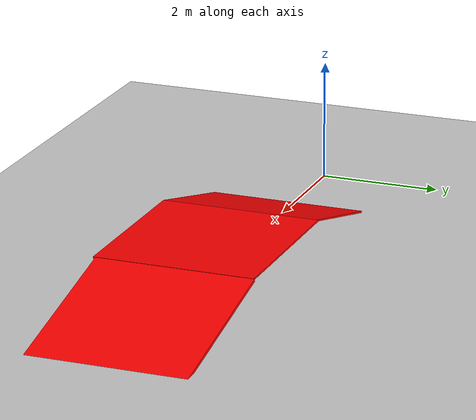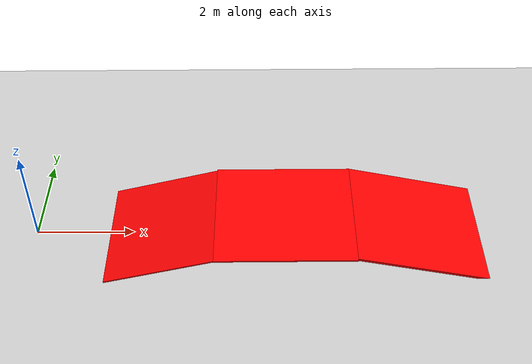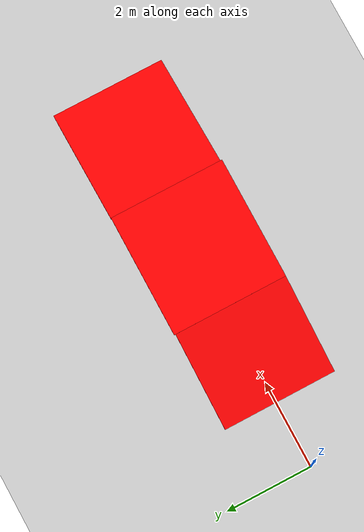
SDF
<sdf version="1.7">
 <world name="default">
  <light name="sun" type="directional">
   <pose>0 0 10 0 -0 0</pose>
   <diffuse>0.8 0.8 0.8 1</diffuse>
   <specular>0.2 0.2 0.2 1</specular>
   <attenuation>
    <range>1000</range>
    <constant>0.9</constant>
    <linear>0.01</linear>
    <quadratic>0.001</quadratic>
   </attenuation>
   <direction>-0.5 0.1 -0.9</direction>
   <spot><inner_angle>0</inner_angle><outer_angle>0</outer_angle><falloff>0</falloff></spot>
  </light>
  <model name="ground_plane">
   <static>1</static>
   <link name="link">
    <collision name="collision">
     <geometry><plane><normal>0 0 1</normal><size>100 100</size></plane></geometry>
     <surface><friction><ode><mu>100</mu><mu2>50</mu2></ode></friction></surface>
    </collision>
    <visual name="visual">
     <cast_shadows>0</cast_shadows>
     <geometry><plane><normal>0 0 1</normal><size>100 100</size></plane></geometry>
     <material>
      <script><uri>file://media/materials/scripts/gazebo.material</uri><name>Gazebo/Grey</name></script>
     </material>
    </visual>
   </link>
  </model>
  <gravity>0 0 -9.8</gravity>
  <magnetic_field>6e-06 2.3e-05 -4.2e-05</magnetic_field>
  <atmosphere type="adiabatic"/>
  <physics type="ode">
   <max_step_size>0.001</max_step_size>
   <real_time_factor>1</real_time_factor>
   <real_time_update_rate>1000</real_time_update_rate>
  </physics>
  <scene><ambient>0.4 0.4 0.4 1</ambient><background>0.7 0.7 0.7 1</background><shadows>1</shadows></scene>
  <spherical_coordinates>
   <surface_model>EARTH_WGS84</surface_model>
   <latitude_deg>0</latitude_deg>
   <longitude_deg>0</longitude_deg>
   <elevation>0</elevation>
   <heading_deg>0</heading_deg>
  </spherical_coordinates>
  <model name="slope_draw_1">
   <link name="link_0">
    <inertial>
     <mass>0.167609</mass>
     <inertia>
      <ixx>0.0952412</ixx>
      <ixy>0</ixy>
      <ixz>0</ixz>
      <iyy>0.0720822</iyy>
      <iyz>0</iyz>
      <izz>0.167301</izz>
     </inertia>
    </inertial>
    <pose>-2.66565 -0.017879 -0.06504 0 -0.257655 0</pose>
    <visual name="visual">
     <geometry><box><size>2.27155 2.61113 0.028157</size></box></geometry>
     <material>
      <lighting>1</lighting>
      <script><uri>file://media/materials/scripts/gazebo.material</uri><name>Gazebo/Grey</name></script>
      <shader type="pixel"><normal_map>__default__</normal_map></shader>
      <ambient>1 0 0 0</ambient>
      <diffuse>0.7 0.7 0.7 1</diffuse>
      <specular>0.01 0.01 0.01 1</specular>
      <emissive>0 0 0 1</emissive>
     </material>
    </visual>
    <collision name="collision">
     <geometry><box><size>2.27155 2.61113 0.028157</size></box></geometry>
     <surface>
      <friction>
       <ode><mu>1</mu><mu2>1</mu2><fdir1>0 0 0</fdir1><slip1>0</slip1><slip2>0</slip2></ode>
       <torsional>
        <coefficient>1</coefficient>
        <patch_radius>0</patch_radius>
        <surface_radius>0</surface_radius>
        <use_patch_radius>1</use_patch_radius>
        <ode><slip>0</slip></ode>
       </torsional>
      </friction>
      <bounce><restitution_coefficient>0</restitution_coefficient><threshold>1e+06</threshold></bounce>
      <contact>
       <collide_without_contact>0</collide_without_contact>
       <collide_without_contact_bitmask>1</collide_without_contact_bitmask>
       <collide_bitmask>1</collide_bitmask>
       <ode>
        <soft_cfm>0</soft_cfm>
        <soft_erp>0.2</soft_erp>
        <kp>1e+13</kp>
        <kd>1</kd>
        <max_vel>0.01</max_vel>
        <min_depth>0</min_depth>
       </ode>
       <bullet>
        <split_impulse>1</split_impulse>
        <split_impulse_penetration_threshold>-0.01</split_impulse_penetration_threshold>
        <soft_cfm>0</soft_cfm>
        <soft_erp>0.2</soft_erp>
        <kp>1e+13</kp>
        <kd>1</kd>
       </bullet>
      </contact>
     </surface>
    </collision>
   </link>
   <link name="link_2">
    <inertial>
     <mass>0.217869</mass>
     <inertia>
      <ixx>0.127028</ixx>
      <ixy>0</ixy>
      <ixz>0</ixz>
      <iyy>0.14357</iyy>
      <iyz>0</iyz>
      <izz>0.270567</izz>
     </inertia>
    </inertial>
    <pose>-0.166603 -0.003085 0.223927 0 -0 0</pose>
    <visual name="visual">
     <geometry><box><size>2.8119 2.64494 0.029306</size></box></geometry>
     <material>
      <lighting>1</lighting>
      <script><uri>file://media/materials/scripts/gazebo.material</uri><name>Gazebo/Grey</name></script>
      <shader type="pixel"><normal_map>__default__</normal_map></shader>
      <ambient>1 0 0 0</ambient>
      <diffuse>0.7 0.7 0.7 1</diffuse>
      <specular>0.01 0.01 0.01 1</specular>
      <emissive>0 0 0 1</emissive>
     </material>
    </visual>
    <collision name="collision">
     <geometry><box><size>2.8119 2.64494 0.029306</size></box></geometry>
     <surface>
      <friction>
       <ode><mu>1</mu><mu2>1</mu2><fdir1>0 0 0</fdir1><slip1>0</slip1><slip2>0</slip2></ode>
       <torsional>
        <coefficient>1</coefficient>
        <patch_radius>0</patch_radius>
        <surface_radius>0</surface_radius>
        <use_patch_radius>1</use_patch_radius>
        <ode><slip>0</slip></ode>
       </torsional>
      </friction>
      <bounce><restitution_coefficient>0</restitution_coefficient><threshold>1e+06</threshold></bounce>
      <contact>
       <collide_without_contact>0</collide_without_contact>
       <collide_without_contact_bitmask>1</collide_without_contact_bitmask>
       <collide_bitmask>1</collide_bitmask>
       <ode>
        <soft_cfm>0</soft_cfm>
        <soft_erp>0.2</soft_erp>
        <kp>1e+13</kp>
        <kd>1</kd>
        <max_vel>0.01</max_vel>
        <min_depth>0</min_depth>
       </ode>
       <bullet>
        <split_impulse>1</split_impulse>
        <split_impulse_penetration_threshold>-0.01</split_impulse_penetration_threshold>
        <soft_cfm>0</soft_cfm>
        <soft_erp>0.2</soft_erp>
        <kp>1e+13</kp>
        <kd>1</kd>
       </bullet>
      </contact>
     </surface>
    </collision>
   </link>
   <link name="link_3">
    <inertial>
     <mass>0.438859</mass>
     <inertia>
      <ixx>0.249945</ixx>
      <ixy>0</ixy>
      <ixz>0</ixz>
      <iyy>0.398876</iyy>
      <iyz>0</iyz>
      <izz>0.648632</izz>
     </inertia>
    </inertial>
    <pose>2.83226 0.020963 -0.158888 0 0.225767 0</pose>
    <visual name="visual">
     <geometry><box><size>3.30214 2.61378 0.050829</size></box></geometry>
     <material>
      <lighting>1</lighting>
      <script><uri>file://media/materials/scripts/gazebo.material</uri><name>Gazebo/Grey</name></script>
      <shader type="pixel"><normal_map>__default__</normal_map></shader>
      <ambient>1 0 0 0</ambient>
      <diffuse>0.7 0.7 0.7 1</diffuse>
      <specular>0.01 0.01 0.01 1</specular>
      <emissive>0 0 0 1</emissive>
     </material>
    </visual>
    <collision name="collision">
     <geometry><box><size>3.30214 2.61378 0.050829</size></box></geometry>
     <surface>
      <friction>
       <ode><mu>1</mu><mu2>1</mu2><fdir1>0 0 0</fdir1><slip1>0</slip1><slip2>0</slip2></ode>
       <torsional>
        <coefficient>1</coefficient>
        <patch_radius>0</patch_radius>
        <surface_radius>0</surface_radius>
        <use_patch_radius>1</use_patch_radius>
        <ode><slip>0</slip></ode>
       </torsional>
      </friction>
      <bounce><restitution_coefficient>0</restitution_coefficient><threshold>1e+06</threshold></bounce>
      <contact>
       <collide_without_contact>0</collide_without_contact>
       <collide_without_contact_bitmask>1</collide_without_contact_bitmask>
       <collide_bitmask>1</collide_bitmask>
       <ode>
        <soft_cfm>0</soft_cfm>
        <soft_erp>0.2</soft_erp>
        <kp>1e+13</kp>
        <kd>1</kd>
        <max_vel>0.01</max_vel>
        <min_depth>0</min_depth>
       </ode>
       <bullet>
        <split_impulse>1</split_impulse>
        <split_impulse_penetration_threshold>-0.01</split_impulse_penetration_threshold>
        <soft_cfm>0</soft_cfm>
        <soft_erp>0.2</soft_erp>
        <kp>1e+13</kp>
        <kd>1</kd>
       </bullet>
      </contact>
     </surface>
    </collision>
   </link>
   <static>1</static>
   <pose>5.2891 -0.073537 0.367756 0 -0 0</pose>
  </model>
 </world>
</sdf>
